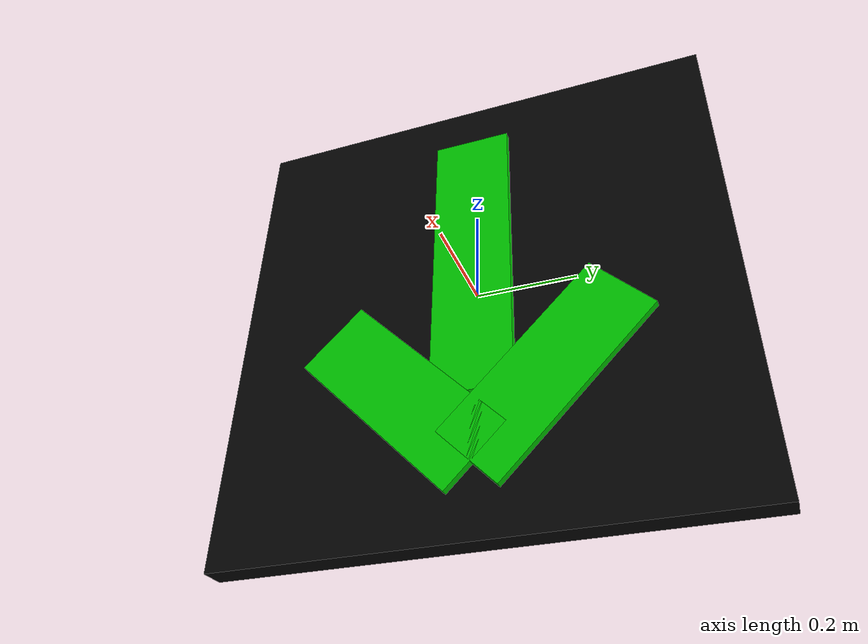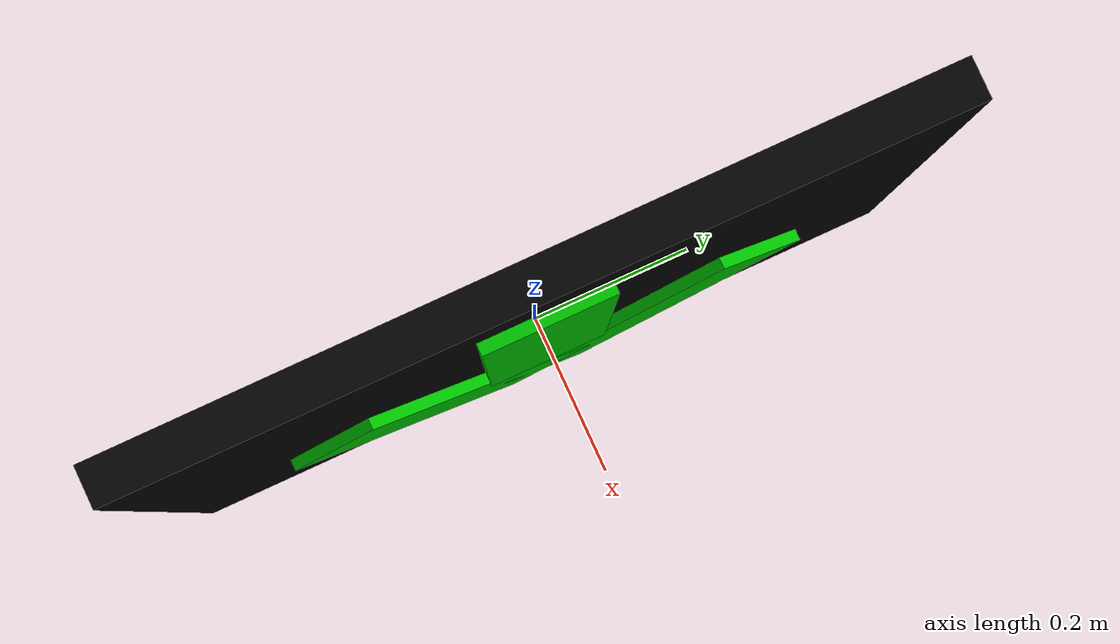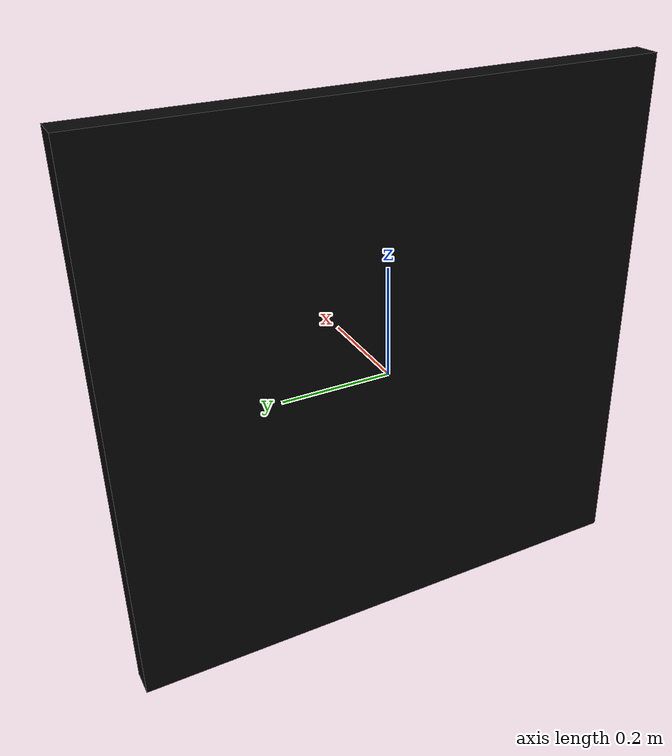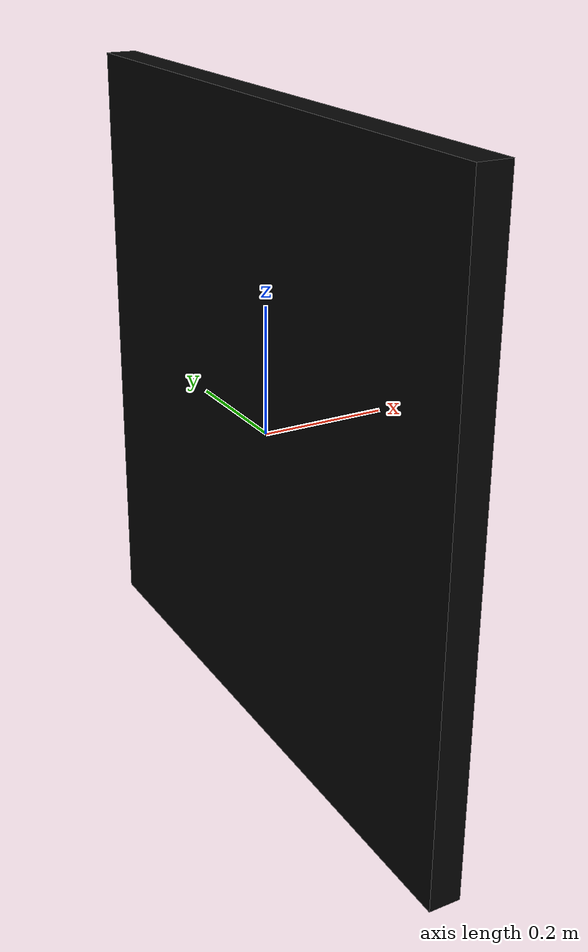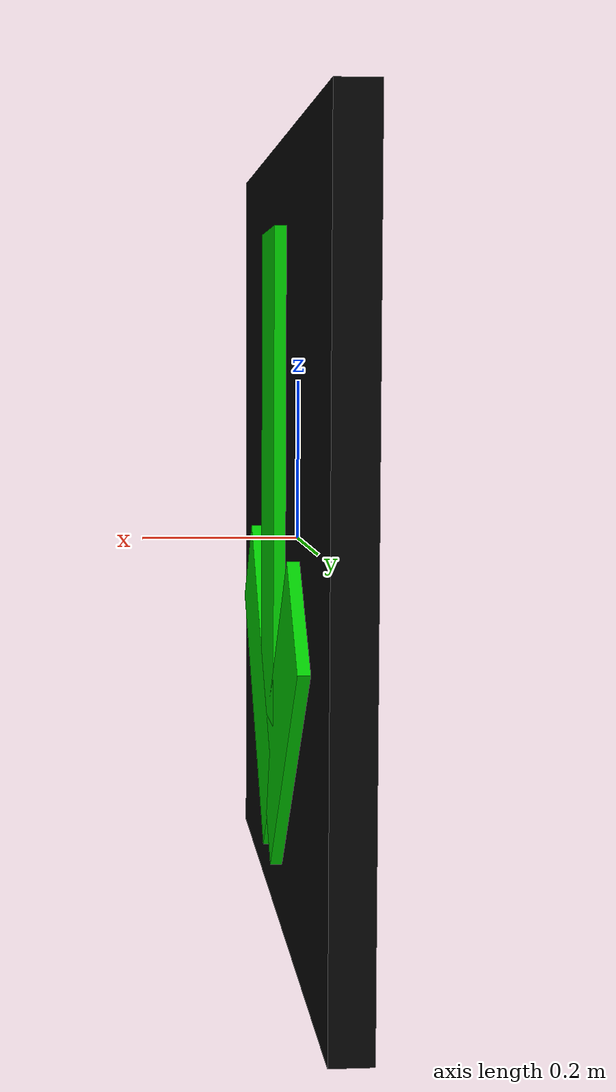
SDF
<?xml version="1.0"?>
<sdf version="1.7">
  <model name="lane_sign_arrow">
    <static>true</static>

    <link name="panel">
      <gravity>false</gravity>

      <!-- 1 x 1 m black background square, 5 cm thick. -->
      <visual name="background">
        <pose>0 0 0 0 0 0</pose>
        <geometry>
          <box>
            <size>0.05 1.0 1.0</size>
          </box>
        </geometry>
        <material>
          <ambient>0.02 0.02 0.02 1</ambient>
          <diffuse>0.02 0.02 0.02 1</diffuse>
          <specular>0.05 0.05 0.05 1</specular>
        </material>
      </visual>

      <!-- Green downward arrow, built from three bars standing proud of the panel. -->
      <visual name="arrow_shaft">
        <pose>0.03 0 0.08 0 0 0</pose>
        <geometry>
          <box>
            <size>0.02 0.16 0.62</size>
          </box>
        </geometry>
        <material>
          <ambient>0 0.1 0 1</ambient>
          <diffuse>0 0.8 0 1</diffuse>
          <specular>0 0 0 1</specular>
          <emissive>0 0.9 0 1</emissive>
        </material>
      </visual>

      <visual name="arrow_head_left">
        <pose>0.03 -0.14 -0.21 0.7854 0 0</pose>
        <geometry>
          <box>
            <size>0.02 0.16 0.42</size>
          </box>
        </geometry>
        <material>
          <ambient>0 0.1 0 1</ambient>
          <diffuse>0 0.8 0 1</diffuse>
          <specular>0 0 0 1</specular>
          <emissive>0 0.9 0 1</emissive>
        </material>
      </visual>

      <visual name="arrow_head_right">
        <pose>0.03 0.14 -0.21 -0.7854 0 0</pose>
        <geometry>
          <box>
            <size>0.02 0.16 0.42</size>
          </box>
        </geometry>
        <material>
          <ambient>0 0.1 0 1</ambient>
          <diffuse>0 0.8 0 1</diffuse>
          <specular>0 0 0 1</specular>
          <emissive>0 0.9 0 1</emissive>
        </material>
      </visual>
    </link>
  </model>
</sdf>
